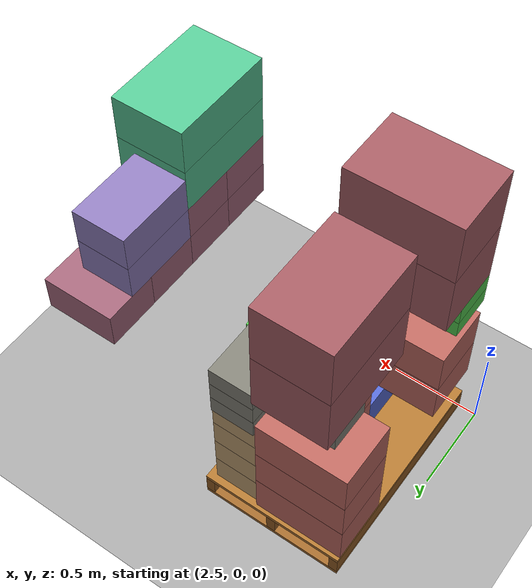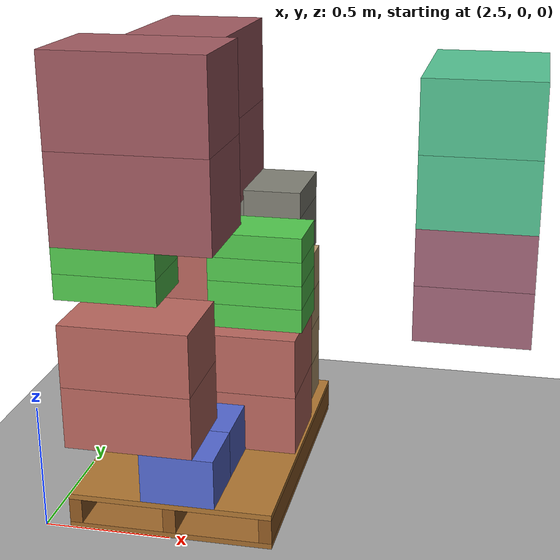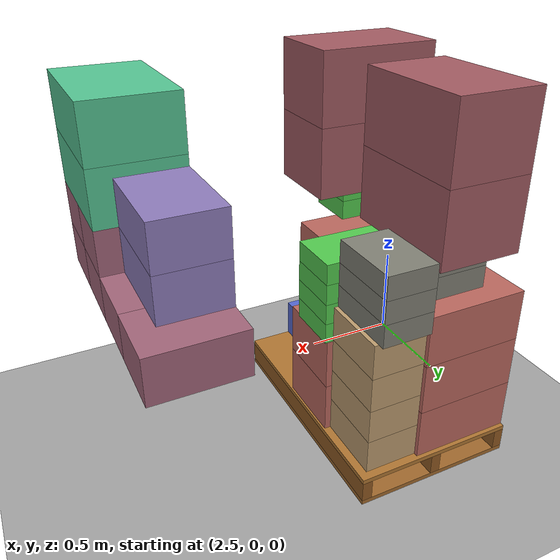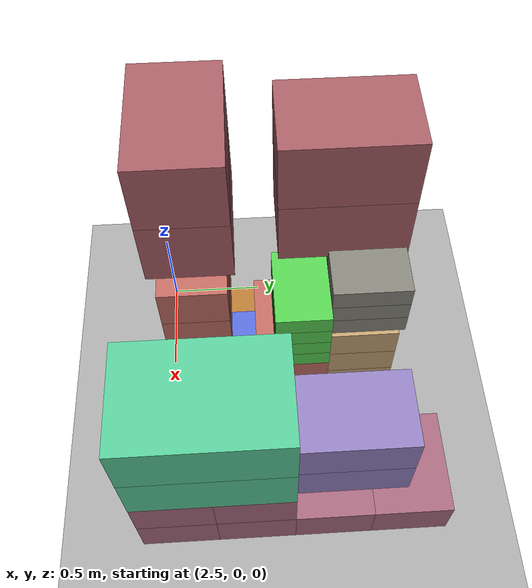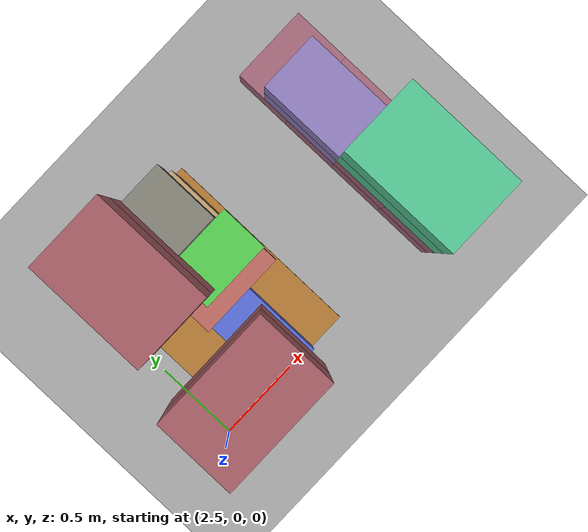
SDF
<sdf version="1.10">
 <world name="pallet_towers">
  <model name="ground_plane">
   <static>true</static>
   <link name="link">
    <collision name="collision">
     <geometry><plane><normal>0 0 1</normal><size>30 30</size></plane></geometry>
     <surface>
      <friction><ode><mu>0.55</mu><mu2>0.55</mu2></ode></friction>
      <bounce><restitution_coefficient>0</restitution_coefficient><threshold>100000</threshold></bounce>
      <contact><ode><kp>1000000</kp><kd>100</kd><max_vel>1</max_vel><min_depth>0.0005</min_depth></ode></contact>
     </surface>
    </collision>
    <visual name="visual">
     <geometry><plane><normal>0 0 1</normal><size>30 30</size></plane></geometry>
     <material><ambient>0.65 0.65 0.65 1</ambient><diffuse>0.65 0.65 0.65 1</diffuse></material>
    </visual>
   </link>
  </model>
  <model name="pallet_03_P03">
   <static>false</static>
   <pose>3 0.6 0.002 0 0 0</pose>
   <allow_auto_disable>false</allow_auto_disable>
   <link name="body">
    <inertial>
     <pose>0 0 0.072 0 0 0</pose>
     <mass>25</mass>
     <inertia>
      <ixx>3.07216082</ixx>
      <ixy>0</ixy>
      <ixz>0</ixz>
      <iyy>1.70896776</iyy>
      <iyz>0</iyz>
      <izz>4.63680694</izz>
     </inertia>
    </inertial>
    <collision name="bottom_deck_collision">
     <pose>0 0 0.011 0 0 0</pose>
     <geometry><box><size>0.8 1.2 0.022</size></box></geometry>
     <surface>
      <friction><ode><mu>0.55</mu><mu2>0.55</mu2></ode></friction>
      <bounce><restitution_coefficient>0</restitution_coefficient><threshold>100000</threshold></bounce>
      <contact><ode><kp>1000000</kp><kd>100</kd><max_vel>1</max_vel><min_depth>0.0005</min_depth></ode></contact>
     </surface>
    </collision>
    <visual name="bottom_deck_visual">
     <pose>0 0 0.011 0 0 0</pose>
     <geometry><box><size>0.8 1.2 0.022</size></box></geometry>
     <material>
      <ambient>0.46 0.28 0.10 1</ambient>
      <diffuse>0.64 0.42 0.18 1</diffuse>
      <specular>0.03 0.03 0.03 1</specular>
     </material>
    </visual>
    <collision name="left_stringer_collision">
     <pose>-0.375 0 0.072 0 0 0</pose>
     <geometry><box><size>0.05 1.2 0.1</size></box></geometry>
     <surface>
      <friction><ode><mu>0.55</mu><mu2>0.55</mu2></ode></friction>
      <bounce><restitution_coefficient>0</restitution_coefficient><threshold>100000</threshold></bounce>
      <contact><ode><kp>1000000</kp><kd>100</kd><max_vel>1</max_vel><min_depth>0.0005</min_depth></ode></contact>
     </surface>
    </collision>
    <visual name="left_stringer_visual">
     <pose>-0.375 0 0.072 0 0 0</pose>
     <geometry><box><size>0.05 1.2 0.1</size></box></geometry>
     <material>
      <ambient>0.42 0.25 0.09 1</ambient>
      <diffuse>0.58 0.36 0.14 1</diffuse>
      <specular>0.03 0.03 0.03 1</specular>
     </material>
    </visual>
    <collision name="centre_stringer_collision">
     <pose>0 0 0.072 0 0 0</pose>
     <geometry><box><size>0.05 1.2 0.1</size></box></geometry>
     <surface>
      <friction><ode><mu>0.55</mu><mu2>0.55</mu2></ode></friction>
      <bounce><restitution_coefficient>0</restitution_coefficient><threshold>100000</threshold></bounce>
      <contact><ode><kp>1000000</kp><kd>100</kd><max_vel>1</max_vel><min_depth>0.0005</min_depth></ode></contact>
     </surface>
    </collision>
    <visual name="centre_stringer_visual">
     <pose>0 0 0.072 0 0 0</pose>
     <geometry><box><size>0.05 1.2 0.1</size></box></geometry>
     <material>
      <ambient>0.42 0.25 0.09 1</ambient>
      <diffuse>0.58 0.36 0.14 1</diffuse>
      <specular>0.03 0.03 0.03 1</specular>
     </material>
    </visual>
    <collision name="right_stringer_collision">
     <pose>0.375 0 0.072 0 0 0</pose>
     <geometry><box><size>0.05 1.2 0.1</size></box></geometry>
     <surface>
      <friction><ode><mu>0.55</mu><mu2>0.55</mu2></ode></friction>
      <bounce><restitution_coefficient>0</restitution_coefficient><threshold>100000</threshold></bounce>
      <contact><ode><kp>1000000</kp><kd>100</kd><max_vel>1</max_vel><min_depth>0.0005</min_depth></ode></contact>
     </surface>
    </collision>
    <visual name="right_stringer_visual">
     <pose>0.375 0 0.072 0 0 0</pose>
     <geometry><box><size>0.05 1.2 0.1</size></box></geometry>
     <material>
      <ambient>0.42 0.25 0.09 1</ambient>
      <diffuse>0.58 0.36 0.14 1</diffuse>
      <specular>0.03 0.03 0.03 1</specular>
     </material>
    </visual>
    <collision name="top_deck_collision">
     <pose>0 0 0.133 0 0 0</pose>
     <geometry><box><size>0.8 1.2 0.022</size></box></geometry>
     <surface>
      <friction><ode><mu>0.55</mu><mu2>0.55</mu2></ode></friction>
      <bounce><restitution_coefficient>0</restitution_coefficient><threshold>100000</threshold></bounce>
      <contact><ode><kp>1000000</kp><kd>100</kd><max_vel>1</max_vel><min_depth>0.0005</min_depth></ode></contact>
     </surface>
    </collision>
    <visual name="top_deck_visual">
     <pose>0 0 0.133 0 0 0</pose>
     <geometry><box><size>0.8 1.2 0.022</size></box></geometry>
     <material>
      <ambient>0.50 0.31 0.11 1</ambient>
      <diffuse>0.70 0.47 0.20 1</diffuse>
      <specular>0.03 0.03 0.03 1</specular>
     </material>
    </visual>
   </link>
  </model>
  <model name="box_p03_0002_CHOCO_004_CHOCO">
   <static>false</static>
   <pose>3.035 0.12 0.246 0 0 0</pose>
   <link name="body">
    <inertial>
     <mass>6</mass>
     <inertia><ixx>0.0488</ixx><ixy>0</ixy><ixz>0</ixz><iyy>0.06205</iyy><iyz>0</iyz><izz>0.07085</izz></inertia>
    </inertial>
    <collision name="collision">
     <geometry><box><size>0.29 0.24 0.2</size></box></geometry>
     <surface>
      <friction><ode><mu>0.55</mu><mu2>0.55</mu2></ode></friction>
      <bounce><restitution_coefficient>0</restitution_coefficient><threshold>100000</threshold></bounce>
      <contact><ode><kp>1000000</kp><kd>100</kd><max_vel>1</max_vel><min_depth>0.0005</min_depth></ode></contact>
     </surface>
    </collision>
    <visual name="visual">
     <geometry><box><size>0.29 0.24 0.2</size></box></geometry>
     <material>
      <ambient>0.337254902 0.419607843 0.835294118 1</ambient>
      <diffuse>0.337254902 0.419607843 0.835294118 1</diffuse>
      <specular>0.05 0.05 0.05 1</specular>
     </material>
    </visual>
   </link>
  </model>
  <model name="box_p03_0004_CHOCO_006_CHOCO">
   <static>false</static>
   <pose>3.035 0.36 0.246 0 0 0</pose>
   <link name="body">
    <inertial>
     <mass>6</mass>
     <inertia><ixx>0.0488</ixx><ixy>0</ixy><ixz>0</ixz><iyy>0.06205</iyy><iyz>0</iyz><izz>0.07085</izz></inertia>
    </inertial>
    <collision name="collision">
     <geometry><box><size>0.29 0.24 0.2</size></box></geometry>
     <surface>
      <friction><ode><mu>0.55</mu><mu2>0.55</mu2></ode></friction>
      <bounce><restitution_coefficient>0</restitution_coefficient><threshold>100000</threshold></bounce>
      <contact><ode><kp>1000000</kp><kd>100</kd><max_vel>1</max_vel><min_depth>0.0005</min_depth></ode></contact>
     </surface>
    </collision>
    <visual name="visual">
     <geometry><box><size>0.29 0.24 0.2</size></box></geometry>
     <material>
      <ambient>0.337254902 0.419607843 0.835294118 1</ambient>
      <diffuse>0.337254902 0.419607843 0.835294118 1</diffuse>
      <specular>0.05 0.05 0.05 1</specular>
     </material>
    </visual>
   </link>
  </model>
  <model name="box_p03_0006_ONION_001_ONION">
   <static>false</static>
   <pose>3.14 0.655 0.271 0 0 0</pose>
   <link name="body">
    <inertial>
     <mass>10</mass>
     <inertia>
      <ixx>0.154166667</ixx>
      <ixy>0</ixy>
      <ixz>0</ixz>
      <iyy>0.260416667</iyy>
      <iyz>0</iyz>
      <izz>0.310416667</izz>
     </inertia>
    </inertial>
    <collision name="collision">
     <geometry><box><size>0.5 0.35 0.25</size></box></geometry>
     <surface>
      <friction><ode><mu>0.55</mu><mu2>0.55</mu2></ode></friction>
      <bounce><restitution_coefficient>0</restitution_coefficient><threshold>100000</threshold></bounce>
      <contact><ode><kp>1000000</kp><kd>100</kd><max_vel>1</max_vel><min_depth>0.0005</min_depth></ode></contact>
     </surface>
    </collision>
    <visual name="visual">
     <geometry><box><size>0.5 0.35 0.25</size></box></geometry>
     <material>
      <ambient>0.741176471 0.411764706 0.376470588 1</ambient>
      <diffuse>0.741176471 0.411764706 0.376470588 1</diffuse>
      <specular>0.05 0.05 0.05 1</specular>
     </material>
    </visual>
   </link>
  </model>
  <model name="box_p03_0007_ONION_002_ONION">
   <static>false</static>
   <pose>2.85 1.005 0.271 0 0 0</pose>
   <link name="body">
    <inertial>
     <mass>10</mass>
     <inertia>
      <ixx>0.154166667</ixx>
      <ixy>0</ixy>
      <ixz>0</ixz>
      <iyy>0.260416667</iyy>
      <iyz>0</iyz>
      <izz>0.310416667</izz>
     </inertia>
    </inertial>
    <collision name="collision">
     <geometry><box><size>0.5 0.35 0.25</size></box></geometry>
     <surface>
      <friction><ode><mu>0.55</mu><mu2>0.55</mu2></ode></friction>
      <bounce><restitution_coefficient>0</restitution_coefficient><threshold>100000</threshold></bounce>
      <contact><ode><kp>1000000</kp><kd>100</kd><max_vel>1</max_vel><min_depth>0.0005</min_depth></ode></contact>
     </surface>
    </collision>
    <visual name="visual">
     <geometry><box><size>0.5 0.35 0.25</size></box></geometry>
     <material>
      <ambient>0.741176471 0.411764706 0.376470588 1</ambient>
      <diffuse>0.741176471 0.411764706 0.376470588 1</diffuse>
      <specular>0.05 0.05 0.05 1</specular>
     </material>
    </visual>
   </link>
  </model>
  <model name="box_p03_0008_ONION_003_ONION">
   <static>false</static>
   <pose>2.85 1.005 0.521 0 0 0</pose>
   <link name="body">
    <inertial>
     <mass>10</mass>
     <inertia>
      <ixx>0.154166667</ixx>
      <ixy>0</ixy>
      <ixz>0</ixz>
      <iyy>0.260416667</iyy>
      <iyz>0</iyz>
      <izz>0.310416667</izz>
     </inertia>
    </inertial>
    <collision name="collision">
     <geometry><box><size>0.5 0.35 0.25</size></box></geometry>
     <surface>
      <friction><ode><mu>0.55</mu><mu2>0.55</mu2></ode></friction>
      <bounce><restitution_coefficient>0</restitution_coefficient><threshold>100000</threshold></bounce>
      <contact><ode><kp>1000000</kp><kd>100</kd><max_vel>1</max_vel><min_depth>0.0005</min_depth></ode></contact>
     </surface>
    </collision>
    <visual name="visual">
     <geometry><box><size>0.5 0.35 0.25</size></box></geometry>
     <material>
      <ambient>0.741176471 0.411764706 0.376470588 1</ambient>
      <diffuse>0.741176471 0.411764706 0.376470588 1</diffuse>
      <specular>0.05 0.05 0.05 1</specular>
     </material>
    </visual>
   </link>
  </model>
  <model name="box_p03_0009_ONION_004_ONION">
   <static>false</static>
   <pose>3.14 0.655 0.521 0 0 0</pose>
   <link name="body">
    <inertial>
     <mass>10</mass>
     <inertia>
      <ixx>0.154166667</ixx>
      <ixy>0</ixy>
      <ixz>0</ixz>
      <iyy>0.260416667</iyy>
      <iyz>0</iyz>
      <izz>0.310416667</izz>
     </inertia>
    </inertial>
    <collision name="collision">
     <geometry><box><size>0.5 0.35 0.25</size></box></geometry>
     <surface>
      <friction><ode><mu>0.55</mu><mu2>0.55</mu2></ode></friction>
      <bounce><restitution_coefficient>0</restitution_coefficient><threshold>100000</threshold></bounce>
      <contact><ode><kp>1000000</kp><kd>100</kd><max_vel>1</max_vel><min_depth>0.0005</min_depth></ode></contact>
     </surface>
    </collision>
    <visual name="visual">
     <geometry><box><size>0.5 0.35 0.25</size></box></geometry>
     <material>
      <ambient>0.741176471 0.411764706 0.376470588 1</ambient>
      <diffuse>0.741176471 0.411764706 0.376470588 1</diffuse>
      <specular>0.05 0.05 0.05 1</specular>
     </material>
    </visual>
   </link>
  </model>
  <model name="box_p03_0010_ONION_005_ONION">
   <static>false</static>
   <pose>2.85 0.175 0.471 0 0 0</pose>
   <link name="body">
    <inertial>
     <mass>10</mass>
     <inertia>
      <ixx>0.154166667</ixx>
      <ixy>0</ixy>
      <ixz>0</ixz>
      <iyy>0.260416667</iyy>
      <iyz>0</iyz>
      <izz>0.310416667</izz>
     </inertia>
    </inertial>
    <collision name="collision">
     <geometry><box><size>0.5 0.35 0.25</size></box></geometry>
     <surface>
      <friction><ode><mu>0.55</mu><mu2>0.55</mu2></ode></friction>
      <bounce><restitution_coefficient>0</restitution_coefficient><threshold>100000</threshold></bounce>
      <contact><ode><kp>1000000</kp><kd>100</kd><max_vel>1</max_vel><min_depth>0.0005</min_depth></ode></contact>
     </surface>
    </collision>
    <visual name="visual">
     <geometry><box><size>0.5 0.35 0.25</size></box></geometry>
     <material>
      <ambient>0.741176471 0.411764706 0.376470588 1</ambient>
      <diffuse>0.741176471 0.411764706 0.376470588 1</diffuse>
      <specular>0.05 0.05 0.05 1</specular>
     </material>
    </visual>
   </link>
  </model>
  <model name="box_p03_0011_ONION_006_ONION">
   <static>false</static>
   <pose>2.85 0.175 0.721 0 0 0</pose>
   <link name="body">
    <inertial>
     <mass>10</mass>
     <inertia>
      <ixx>0.154166667</ixx>
      <ixy>0</ixy>
      <ixz>0</ixz>
      <iyy>0.260416667</iyy>
      <iyz>0</iyz>
      <izz>0.310416667</izz>
     </inertia>
    </inertial>
    <collision name="collision">
     <geometry><box><size>0.5 0.35 0.25</size></box></geometry>
     <surface>
      <friction><ode><mu>0.55</mu><mu2>0.55</mu2></ode></friction>
      <bounce><restitution_coefficient>0</restitution_coefficient><threshold>100000</threshold></bounce>
      <contact><ode><kp>1000000</kp><kd>100</kd><max_vel>1</max_vel><min_depth>0.0005</min_depth></ode></contact>
     </surface>
    </collision>
    <visual name="visual">
     <geometry><box><size>0.5 0.35 0.25</size></box></geometry>
     <material>
      <ambient>0.741176471 0.411764706 0.376470588 1</ambient>
      <diffuse>0.741176471 0.411764706 0.376470588 1</diffuse>
      <specular>0.05 0.05 0.05 1</specular>
     </material>
    </visual>
   </link>
  </model>
  <model name="box_p03_0012_ONION_007_ONION">
   <static>false</static>
   <pose>2.85 1.005 0.771 0 0 0</pose>
   <link name="body">
    <inertial>
     <mass>10</mass>
     <inertia>
      <ixx>0.154166667</ixx>
      <ixy>0</ixy>
      <ixz>0</ixz>
      <iyy>0.260416667</iyy>
      <iyz>0</iyz>
      <izz>0.310416667</izz>
     </inertia>
    </inertial>
    <collision name="collision">
     <geometry><box><size>0.5 0.35 0.25</size></box></geometry>
     <surface>
      <friction><ode><mu>0.55</mu><mu2>0.55</mu2></ode></friction>
      <bounce><restitution_coefficient>0</restitution_coefficient><threshold>100000</threshold></bounce>
      <contact><ode><kp>1000000</kp><kd>100</kd><max_vel>1</max_vel><min_depth>0.0005</min_depth></ode></contact>
     </surface>
    </collision>
    <visual name="visual">
     <geometry><box><size>0.5 0.35 0.25</size></box></geometry>
     <material>
      <ambient>0.741176471 0.411764706 0.376470588 1</ambient>
      <diffuse>0.741176471 0.411764706 0.376470588 1</diffuse>
      <specular>0.05 0.05 0.05 1</specular>
     </material>
    </visual>
   </link>
  </model>
  <model name="box_p03_0013_HONEY_001_HONEY">
   <static>false</static>
   <pose>3.23 0.995 0.231 0 0 0</pose>
   <link name="body">
    <inertial>
     <mass>8</mass>
     <inertia>
      <ixx>0.0918666667</ixx>
      <ixy>0</ixy>
      <ixz>0</ixz>
      <iyy>0.0643333333</iyy>
      <iyz>0</iyz>
      <izz>0.117666667</izz>
     </inertia>
    </inertial>
    <collision name="collision">
     <geometry><box><size>0.26 0.33 0.17</size></box></geometry>
     <surface>
      <friction><ode><mu>0.55</mu><mu2>0.55</mu2></ode></friction>
      <bounce><restitution_coefficient>0</restitution_coefficient><threshold>100000</threshold></bounce>
      <contact><ode><kp>1000000</kp><kd>100</kd><max_vel>1</max_vel><min_depth>0.0005</min_depth></ode></contact>
     </surface>
    </collision>
    <visual name="visual">
     <geometry><box><size>0.26 0.33 0.17</size></box></geometry>
     <material>
      <ambient>0.752941176 0.623529412 0.443137255 1</ambient>
      <diffuse>0.752941176 0.623529412 0.443137255 1</diffuse>
      <specular>0.05 0.05 0.05 1</specular>
     </material>
    </visual>
   </link>
  </model>
  <model name="box_p03_0014_HONEY_002_HONEY">
   <static>false</static>
   <pose>3.23 0.995 0.401 0 0 0</pose>
   <link name="body">
    <inertial>
     <mass>8</mass>
     <inertia>
      <ixx>0.0918666667</ixx>
      <ixy>0</ixy>
      <ixz>0</ixz>
      <iyy>0.0643333333</iyy>
      <iyz>0</iyz>
      <izz>0.117666667</izz>
     </inertia>
    </inertial>
    <collision name="collision">
     <geometry><box><size>0.26 0.33 0.17</size></box></geometry>
     <surface>
      <friction><ode><mu>0.55</mu><mu2>0.55</mu2></ode></friction>
      <bounce><restitution_coefficient>0</restitution_coefficient><threshold>100000</threshold></bounce>
      <contact><ode><kp>1000000</kp><kd>100</kd><max_vel>1</max_vel><min_depth>0.0005</min_depth></ode></contact>
     </surface>
    </collision>
    <visual name="visual">
     <geometry><box><size>0.26 0.33 0.17</size></box></geometry>
     <material>
      <ambient>0.752941176 0.623529412 0.443137255 1</ambient>
      <diffuse>0.752941176 0.623529412 0.443137255 1</diffuse>
      <specular>0.05 0.05 0.05 1</specular>
     </material>
    </visual>
   </link>
  </model>
  <model name="box_p03_0015_HONEY_003_HONEY">
   <static>false</static>
   <pose>3.23 0.995 0.571 0 0 0</pose>
   <link name="body">
    <inertial>
     <mass>8</mass>
     <inertia>
      <ixx>0.0918666667</ixx>
      <ixy>0</ixy>
      <ixz>0</ixz>
      <iyy>0.0643333333</iyy>
      <iyz>0</iyz>
      <izz>0.117666667</izz>
     </inertia>
    </inertial>
    <collision name="collision">
     <geometry><box><size>0.26 0.33 0.17</size></box></geometry>
     <surface>
      <friction><ode><mu>0.55</mu><mu2>0.55</mu2></ode></friction>
      <bounce><restitution_coefficient>0</restitution_coefficient><threshold>100000</threshold></bounce>
      <contact><ode><kp>1000000</kp><kd>100</kd><max_vel>1</max_vel><min_depth>0.0005</min_depth></ode></contact>
     </surface>
    </collision>
    <visual name="visual">
     <geometry><box><size>0.26 0.33 0.17</size></box></geometry>
     <material>
      <ambient>0.752941176 0.623529412 0.443137255 1</ambient>
      <diffuse>0.752941176 0.623529412 0.443137255 1</diffuse>
      <specular>0.05 0.05 0.05 1</specular>
     </material>
    </visual>
   </link>
  </model>
  <model name="box_p03_0018_HONEY_006_HONEY">
   <static>false</static>
   <pose>3.23 0.995 0.741 0 0 0</pose>
   <link name="body">
    <inertial>
     <mass>8</mass>
     <inertia>
      <ixx>0.0918666667</ixx>
      <ixy>0</ixy>
      <ixz>0</ixz>
      <iyy>0.0643333333</iyy>
      <iyz>0</iyz>
      <izz>0.117666667</izz>
     </inertia>
    </inertial>
    <collision name="collision">
     <geometry><box><size>0.26 0.33 0.17</size></box></geometry>
     <surface>
      <friction><ode><mu>0.55</mu><mu2>0.55</mu2></ode></friction>
      <bounce><restitution_coefficient>0</restitution_coefficient><threshold>100000</threshold></bounce>
      <contact><ode><kp>1000000</kp><kd>100</kd><max_vel>1</max_vel><min_depth>0.0005</min_depth></ode></contact>
     </surface>
    </collision>
    <visual name="visual">
     <geometry><box><size>0.26 0.33 0.17</size></box></geometry>
     <material>
      <ambient>0.752941176 0.623529412 0.443137255 1</ambient>
      <diffuse>0.752941176 0.623529412 0.443137255 1</diffuse>
      <specular>0.05 0.05 0.05 1</specular>
     </material>
    </visual>
   </link>
  </model>
  <model name="box_p03_0020_YOGURT_001_YOGURT">
   <static>false</static>
   <pose>3.205 0.7 0.696 0 0 0</pose>
   <link name="body">
    <inertial>
     <mass>5</mass>
     <inertia>
      <ixx>0.0323333333</ixx>
      <ixy>0</ixy>
      <ixz>0</ixz>
      <iyy>0.0675416667</iyy>
      <iyz>0</iyz>
      <izz>0.0915416667</izz>
     </inertia>
    </inertial>
    <collision name="collision">
     <geometry><box><size>0.39 0.26 0.1</size></box></geometry>
     <surface>
      <friction><ode><mu>0.55</mu><mu2>0.55</mu2></ode></friction>
      <bounce><restitution_coefficient>0</restitution_coefficient><threshold>100000</threshold></bounce>
      <contact><ode><kp>1000000</kp><kd>100</kd><max_vel>1</max_vel><min_depth>0.0005</min_depth></ode></contact>
     </surface>
    </collision>
    <visual name="visual">
     <geometry><box><size>0.39 0.26 0.1</size></box></geometry>
     <material>
      <ambient>0.329411765 0.803921569 0.31372549 1</ambient>
      <diffuse>0.329411765 0.803921569 0.31372549 1</diffuse>
      <specular>0.05 0.05 0.05 1</specular>
     </material>
    </visual>
   </link>
  </model>
  <model name="box_p03_0021_YOGURT_002_YOGURT">
   <static>false</static>
   <pose>3.205 0.7 0.796 0 0 0</pose>
   <link name="body">
    <inertial>
     <mass>5</mass>
     <inertia>
      <ixx>0.0323333333</ixx>
      <ixy>0</ixy>
      <ixz>0</ixz>
      <iyy>0.0675416667</iyy>
      <iyz>0</iyz>
      <izz>0.0915416667</izz>
     </inertia>
    </inertial>
    <collision name="collision">
     <geometry><box><size>0.39 0.26 0.1</size></box></geometry>
     <surface>
      <friction><ode><mu>0.55</mu><mu2>0.55</mu2></ode></friction>
      <bounce><restitution_coefficient>0</restitution_coefficient><threshold>100000</threshold></bounce>
      <contact><ode><kp>1000000</kp><kd>100</kd><max_vel>1</max_vel><min_depth>0.0005</min_depth></ode></contact>
     </surface>
    </collision>
    <visual name="visual">
     <geometry><box><size>0.39 0.26 0.1</size></box></geometry>
     <material>
      <ambient>0.329411765 0.803921569 0.31372549 1</ambient>
      <diffuse>0.329411765 0.803921569 0.31372549 1</diffuse>
      <specular>0.05 0.05 0.05 1</specular>
     </material>
    </visual>
   </link>
  </model>
  <model name="box_p03_0022_YOGURT_003_YOGURT">
   <static>false</static>
   <pose>3.205 0.7 0.896 0 0 0</pose>
   <link name="body">
    <inertial>
     <mass>5</mass>
     <inertia>
      <ixx>0.0323333333</ixx>
      <ixy>0</ixy>
      <ixz>0</ixz>
      <iyy>0.0675416667</iyy>
      <iyz>0</iyz>
      <izz>0.0915416667</izz>
     </inertia>
    </inertial>
    <collision name="collision">
     <geometry><box><size>0.39 0.26 0.1</size></box></geometry>
     <surface>
      <friction><ode><mu>0.55</mu><mu2>0.55</mu2></ode></friction>
      <bounce><restitution_coefficient>0</restitution_coefficient><threshold>100000</threshold></bounce>
      <contact><ode><kp>1000000</kp><kd>100</kd><max_vel>1</max_vel><min_depth>0.0005</min_depth></ode></contact>
     </surface>
    </collision>
    <visual name="visual">
     <geometry><box><size>0.39 0.26 0.1</size></box></geometry>
     <material>
      <ambient>0.329411765 0.803921569 0.31372549 1</ambient>
      <diffuse>0.329411765 0.803921569 0.31372549 1</diffuse>
      <specular>0.05 0.05 0.05 1</specular>
     </material>
    </visual>
   </link>
  </model>
  <model name="box_p03_0023_YOGURT_004_YOGURT">
   <static>false</static>
   <pose>3.205 0.7 0.996 0 0 0</pose>
   <link name="body">
    <inertial>
     <mass>5</mass>
     <inertia>
      <ixx>0.0323333333</ixx>
      <ixy>0</ixy>
      <ixz>0</ixz>
      <iyy>0.0675416667</iyy>
      <iyz>0</iyz>
      <izz>0.0915416667</izz>
     </inertia>
    </inertial>
    <collision name="collision">
     <geometry><box><size>0.39 0.26 0.1</size></box></geometry>
     <surface>
      <friction><ode><mu>0.55</mu><mu2>0.55</mu2></ode></friction>
      <bounce><restitution_coefficient>0</restitution_coefficient><threshold>100000</threshold></bounce>
      <contact><ode><kp>1000000</kp><kd>100</kd><max_vel>1</max_vel><min_depth>0.0005</min_depth></ode></contact>
     </surface>
    </collision>
    <visual name="visual">
     <geometry><box><size>0.39 0.26 0.1</size></box></geometry>
     <material>
      <ambient>0.329411765 0.803921569 0.31372549 1</ambient>
      <diffuse>0.329411765 0.803921569 0.31372549 1</diffuse>
      <specular>0.05 0.05 0.05 1</specular>
     </material>
    </visual>
   </link>
  </model>
  <model name="box_p03_0025_YOGURT_006_YOGURT">
   <static>false</static>
   <pose>2.795 0.13 0.996 0 0 0</pose>
   <link name="body">
    <inertial>
     <mass>5</mass>
     <inertia>
      <ixx>0.0323333333</ixx>
      <ixy>0</ixy>
      <ixz>0</ixz>
      <iyy>0.0675416667</iyy>
      <iyz>0</iyz>
      <izz>0.0915416667</izz>
     </inertia>
    </inertial>
    <collision name="collision">
     <geometry><box><size>0.39 0.26 0.1</size></box></geometry>
     <surface>
      <friction><ode><mu>0.55</mu><mu2>0.55</mu2></ode></friction>
      <bounce><restitution_coefficient>0</restitution_coefficient><threshold>100000</threshold></bounce>
      <contact><ode><kp>1000000</kp><kd>100</kd><max_vel>1</max_vel><min_depth>0.0005</min_depth></ode></contact>
     </surface>
    </collision>
    <visual name="visual">
     <geometry><box><size>0.39 0.26 0.1</size></box></geometry>
     <material>
      <ambient>0.329411765 0.803921569 0.31372549 1</ambient>
      <diffuse>0.329411765 0.803921569 0.31372549 1</diffuse>
      <specular>0.05 0.05 0.05 1</specular>
     </material>
    </visual>
   </link>
  </model>
  <model name="box_p03_0026_YOGURT_007_YOGURT">
   <static>false</static>
   <pose>2.795 0.13 1.096 0 0 0</pose>
   <link name="body">
    <inertial>
     <mass>5</mass>
     <inertia>
      <ixx>0.0323333333</ixx>
      <ixy>0</ixy>
      <ixz>0</ixz>
      <iyy>0.0675416667</iyy>
      <iyz>0</iyz>
      <izz>0.0915416667</izz>
     </inertia>
    </inertial>
    <collision name="collision">
     <geometry><box><size>0.39 0.26 0.1</size></box></geometry>
     <surface>
      <friction><ode><mu>0.55</mu><mu2>0.55</mu2></ode></friction>
      <bounce><restitution_coefficient>0</restitution_coefficient><threshold>100000</threshold></bounce>
      <contact><ode><kp>1000000</kp><kd>100</kd><max_vel>1</max_vel><min_depth>0.0005</min_depth></ode></contact>
     </surface>
    </collision>
    <visual name="visual">
     <geometry><box><size>0.39 0.26 0.1</size></box></geometry>
     <material>
      <ambient>0.329411765 0.803921569 0.31372549 1</ambient>
      <diffuse>0.329411765 0.803921569 0.31372549 1</diffuse>
      <specular>0.05 0.05 0.05 1</specular>
     </material>
    </visual>
   </link>
  </model>
  <model name="box_p03_0027_BUTTER_001_BUTTER">
   <static>false</static>
   <pose>3.22 1.01 0.881 0 0 0</pose>
   <link name="body">
    <inertial>
     <mass>10</mass>
     <inertia>
      <ixx>0.118083333</ixx>
      <ixy>0</ixy>
      <ixz>0</ixz>
      <iyy>0.0580833333</iyy>
      <iyz>0</iyz>
      <izz>0.156</izz>
     </inertia>
    </inertial>
    <collision name="collision">
     <geometry><box><size>0.24 0.36 0.11</size></box></geometry>
     <surface>
      <friction><ode><mu>0.55</mu><mu2>0.55</mu2></ode></friction>
      <bounce><restitution_coefficient>0</restitution_coefficient><threshold>100000</threshold></bounce>
      <contact><ode><kp>1000000</kp><kd>100</kd><max_vel>1</max_vel><min_depth>0.0005</min_depth></ode></contact>
     </surface>
    </collision>
    <visual name="visual">
     <geometry><box><size>0.24 0.36 0.11</size></box></geometry>
     <material>
      <ambient>0.51372549 0.509803922 0.466666667 1</ambient>
      <diffuse>0.51372549 0.509803922 0.466666667 1</diffuse>
      <specular>0.05 0.05 0.05 1</specular>
     </material>
    </visual>
   </link>
  </model>
  <model name="box_p03_0028_BUTTER_002_BUTTER">
   <static>false</static>
   <pose>3.22 1.01 0.991 0 0 0</pose>
   <link name="body">
    <inertial>
     <mass>10</mass>
     <inertia>
      <ixx>0.118083333</ixx>
      <ixy>0</ixy>
      <ixz>0</ixz>
      <iyy>0.0580833333</iyy>
      <iyz>0</iyz>
      <izz>0.156</izz>
     </inertia>
    </inertial>
    <collision name="collision">
     <geometry><box><size>0.24 0.36 0.11</size></box></geometry>
     <surface>
      <friction><ode><mu>0.55</mu><mu2>0.55</mu2></ode></friction>
      <bounce><restitution_coefficient>0</restitution_coefficient><threshold>100000</threshold></bounce>
      <contact><ode><kp>1000000</kp><kd>100</kd><max_vel>1</max_vel><min_depth>0.0005</min_depth></ode></contact>
     </surface>
    </collision>
    <visual name="visual">
     <geometry><box><size>0.24 0.36 0.11</size></box></geometry>
     <material>
      <ambient>0.51372549 0.509803922 0.466666667 1</ambient>
      <diffuse>0.51372549 0.509803922 0.466666667 1</diffuse>
      <specular>0.05 0.05 0.05 1</specular>
     </material>
    </visual>
   </link>
  </model>
  <model name="box_p03_0029_BUTTER_003_BUTTER">
   <static>false</static>
   <pose>2.92 0.95 0.951 0 0 0</pose>
   <link name="body">
    <inertial>
     <mass>10</mass>
     <inertia>
      <ixx>0.0580833333</ixx>
      <ixy>0</ixy>
      <ixz>0</ixz>
      <iyy>0.118083333</iyy>
      <iyz>0</iyz>
      <izz>0.156</izz>
     </inertia>
    </inertial>
    <collision name="collision">
     <geometry><box><size>0.36 0.24 0.11</size></box></geometry>
     <surface>
      <friction><ode><mu>0.55</mu><mu2>0.55</mu2></ode></friction>
      <bounce><restitution_coefficient>0</restitution_coefficient><threshold>100000</threshold></bounce>
      <contact><ode><kp>1000000</kp><kd>100</kd><max_vel>1</max_vel><min_depth>0.0005</min_depth></ode></contact>
     </surface>
    </collision>
    <visual name="visual">
     <geometry><box><size>0.36 0.24 0.11</size></box></geometry>
     <material>
      <ambient>0.51372549 0.509803922 0.466666667 1</ambient>
      <diffuse>0.51372549 0.509803922 0.466666667 1</diffuse>
      <specular>0.05 0.05 0.05 1</specular>
     </material>
    </visual>
   </link>
  </model>
  <model name="box_p03_0030_BUTTER_004_BUTTER">
   <static>false</static>
   <pose>2.92 0.95 1.061 0 0 0</pose>
   <link name="body">
    <inertial>
     <mass>10</mass>
     <inertia>
      <ixx>0.0580833333</ixx>
      <ixy>0</ixy>
      <ixz>0</ixz>
      <iyy>0.118083333</iyy>
      <iyz>0</iyz>
      <izz>0.156</izz>
     </inertia>
    </inertial>
    <collision name="collision">
     <geometry><box><size>0.36 0.24 0.11</size></box></geometry>
     <surface>
      <friction><ode><mu>0.55</mu><mu2>0.55</mu2></ode></friction>
      <bounce><restitution_coefficient>0</restitution_coefficient><threshold>100000</threshold></bounce>
      <contact><ode><kp>1000000</kp><kd>100</kd><max_vel>1</max_vel><min_depth>0.0005</min_depth></ode></contact>
     </surface>
    </collision>
    <visual name="visual">
     <geometry><box><size>0.36 0.24 0.11</size></box></geometry>
     <material>
      <ambient>0.51372549 0.509803922 0.466666667 1</ambient>
      <diffuse>0.51372549 0.509803922 0.466666667 1</diffuse>
      <specular>0.05 0.05 0.05 1</specular>
     </material>
    </visual>
   </link>
  </model>
  <model name="box_p03_0033_BUTTER_007_BUTTER">
   <static>false</static>
   <pose>3.22 1.01 1.101 0 0 0</pose>
   <link name="body">
    <inertial>
     <mass>10</mass>
     <inertia>
      <ixx>0.118083333</ixx>
      <ixy>0</ixy>
      <ixz>0</ixz>
      <iyy>0.0580833333</iyy>
      <iyz>0</iyz>
      <izz>0.156</izz>
     </inertia>
    </inertial>
    <collision name="collision">
     <geometry><box><size>0.24 0.36 0.11</size></box></geometry>
     <surface>
      <friction><ode><mu>0.55</mu><mu2>0.55</mu2></ode></friction>
      <bounce><restitution_coefficient>0</restitution_coefficient><threshold>100000</threshold></bounce>
      <contact><ode><kp>1000000</kp><kd>100</kd><max_vel>1</max_vel><min_depth>0.0005</min_depth></ode></contact>
     </surface>
    </collision>
    <visual name="visual">
     <geometry><box><size>0.24 0.36 0.11</size></box></geometry>
     <material>
      <ambient>0.51372549 0.509803922 0.466666667 1</ambient>
      <diffuse>0.51372549 0.509803922 0.466666667 1</diffuse>
      <specular>0.05 0.05 0.05 1</specular>
     </material>
    </visual>
   </link>
  </model>
  <model name="box_p03_0034_CHIPS_001_CHIPS">
   <static>false</static>
   <pose>2.9 0.9 1.291 0 0 0</pose>
   <link name="body">
    <inertial>
     <mass>3.5</mass>
     <inertia>
      <ixx>0.140729167</ixx>
      <ixy>0</ixy>
      <ixz>0</ixz>
      <iyy>0.0823958333</iyy>
      <iyz>0</iyz>
      <izz>0.151666667</izz>
     </inertia>
    </inertial>
    <collision name="collision">
     <geometry><box><size>0.4 0.6 0.35</size></box></geometry>
     <surface>
      <friction><ode><mu>0.55</mu><mu2>0.55</mu2></ode></friction>
      <bounce><restitution_coefficient>0</restitution_coefficient><threshold>100000</threshold></bounce>
      <contact><ode><kp>1000000</kp><kd>100</kd><max_vel>1</max_vel><min_depth>0.0005</min_depth></ode></contact>
     </surface>
    </collision>
    <visual name="visual">
     <geometry><box><size>0.4 0.6 0.35</size></box></geometry>
     <material>
      <ambient>0.643137255 0.360784314 0.388235294 1</ambient>
      <diffuse>0.643137255 0.360784314 0.388235294 1</diffuse>
      <specular>0.05 0.05 0.05 1</specular>
     </material>
    </visual>
   </link>
  </model>
  <model name="box_p03_0035_CHIPS_002_CHIPS">
   <static>false</static>
   <pose>2.9 0.2 1.321 0 0 0</pose>
   <link name="body">
    <inertial>
     <mass>3.5</mass>
     <inertia>
      <ixx>0.0823958333</ixx>
      <ixy>0</ixy>
      <ixz>0</ixz>
      <iyy>0.140729167</iyy>
      <iyz>0</iyz>
      <izz>0.151666667</izz>
     </inertia>
    </inertial>
    <collision name="collision">
     <geometry><box><size>0.6 0.4 0.35</size></box></geometry>
     <surface>
      <friction><ode><mu>0.55</mu><mu2>0.55</mu2></ode></friction>
      <bounce><restitution_coefficient>0</restitution_coefficient><threshold>100000</threshold></bounce>
      <contact><ode><kp>1000000</kp><kd>100</kd><max_vel>1</max_vel><min_depth>0.0005</min_depth></ode></contact>
     </surface>
    </collision>
    <visual name="visual">
     <geometry><box><size>0.6 0.4 0.35</size></box></geometry>
     <material>
      <ambient>0.643137255 0.360784314 0.388235294 1</ambient>
      <diffuse>0.643137255 0.360784314 0.388235294 1</diffuse>
      <specular>0.05 0.05 0.05 1</specular>
     </material>
    </visual>
   </link>
  </model>
  <model name="box_p03_0036_CHIPS_003_CHIPS">
   <static>false</static>
   <pose>2.9 0.2 1.671 0 0 0</pose>
   <link name="body">
    <inertial>
     <mass>3.5</mass>
     <inertia>
      <ixx>0.0823958333</ixx>
      <ixy>0</ixy>
      <ixz>0</ixz>
      <iyy>0.140729167</iyy>
      <iyz>0</iyz>
      <izz>0.151666667</izz>
     </inertia>
    </inertial>
    <collision name="collision">
     <geometry><box><size>0.6 0.4 0.35</size></box></geometry>
     <surface>
      <friction><ode><mu>0.55</mu><mu2>0.55</mu2></ode></friction>
      <bounce><restitution_coefficient>0</restitution_coefficient><threshold>100000</threshold></bounce>
      <contact><ode><kp>1000000</kp><kd>100</kd><max_vel>1</max_vel><min_depth>0.0005</min_depth></ode></contact>
     </surface>
    </collision>
    <visual name="visual">
     <geometry><box><size>0.6 0.4 0.35</size></box></geometry>
     <material>
      <ambient>0.643137255 0.360784314 0.388235294 1</ambient>
      <diffuse>0.643137255 0.360784314 0.388235294 1</diffuse>
      <specular>0.05 0.05 0.05 1</specular>
     </material>
    </visual>
   </link>
  </model>
  <model name="box_p03_0037_CHIPS_004_CHIPS">
   <static>false</static>
   <pose>2.9 0.9 1.641 0 0 0</pose>
   <link name="body">
    <inertial>
     <mass>3.5</mass>
     <inertia>
      <ixx>0.140729167</ixx>
      <ixy>0</ixy>
      <ixz>0</ixz>
      <iyy>0.0823958333</iyy>
      <iyz>0</iyz>
      <izz>0.151666667</izz>
     </inertia>
    </inertial>
    <collision name="collision">
     <geometry><box><size>0.4 0.6 0.35</size></box></geometry>
     <surface>
      <friction><ode><mu>0.55</mu><mu2>0.55</mu2></ode></friction>
      <bounce><restitution_coefficient>0</restitution_coefficient><threshold>100000</threshold></bounce>
      <contact><ode><kp>1000000</kp><kd>100</kd><max_vel>1</max_vel><min_depth>0.0005</min_depth></ode></contact>
     </surface>
    </collision>
    <visual name="visual">
     <geometry><box><size>0.4 0.6 0.35</size></box></geometry>
     <material>
      <ambient>0.643137255 0.360784314 0.388235294 1</ambient>
      <diffuse>0.643137255 0.360784314 0.388235294 1</diffuse>
      <specular>0.05 0.05 0.05 1</specular>
     </material>
    </visual>
   </link>
  </model>
  <model name="box_p04_0010_ICECRM_001_ICECRM">
   <static>false</static>
   <pose>4.1 0.15 0.996 0 0 0</pose>
   <link name="body">
    <inertial>
     <mass>8</mass>
     <inertia>
      <ixx>0.0866666667</ixx>
      <ixy>0</ixy>
      <ixz>0</ixz>
      <iyy>0.133333333</iyy>
      <iyz>0</iyz>
      <izz>0.166666667</izz>
     </inertia>
    </inertial>
    <collision name="collision">
     <geometry><box><size>0.4 0.3 0.2</size></box></geometry>
     <surface>
      <friction><ode><mu>0.55</mu><mu2>0.55</mu2></ode></friction>
      <bounce><restitution_coefficient>0</restitution_coefficient><threshold>100000</threshold></bounce>
      <contact><ode><kp>1000000</kp><kd>100</kd><max_vel>1</max_vel><min_depth>0.0005</min_depth></ode></contact>
     </surface>
    </collision>
    <visual name="visual">
     <geometry><box><size>0.4 0.3 0.2</size></box></geometry>
     <material>
      <ambient>0.643137255 0.403921569 0.482352941 1</ambient>
      <diffuse>0.643137255 0.403921569 0.482352941 1</diffuse>
      <specular>0.05 0.05 0.05 1</specular>
     </material>
    </visual>
   </link>
  </model>
  <model name="box_p04_0011_ICECRM_002_ICECRM">
   <static>false</static>
   <pose>4.1 0.45 0.996 0 0 0</pose>
   <link name="body">
    <inertial>
     <mass>8</mass>
     <inertia>
      <ixx>0.0866666667</ixx>
      <ixy>0</ixy>
      <ixz>0</ixz>
      <iyy>0.133333333</iyy>
      <iyz>0</iyz>
      <izz>0.166666667</izz>
     </inertia>
    </inertial>
    <collision name="collision">
     <geometry><box><size>0.4 0.3 0.2</size></box></geometry>
     <surface>
      <friction><ode><mu>0.55</mu><mu2>0.55</mu2></ode></friction>
      <bounce><restitution_coefficient>0</restitution_coefficient><threshold>100000</threshold></bounce>
      <contact><ode><kp>1000000</kp><kd>100</kd><max_vel>1</max_vel><min_depth>0.0005</min_depth></ode></contact>
     </surface>
    </collision>
    <visual name="visual">
     <geometry><box><size>0.4 0.3 0.2</size></box></geometry>
     <material>
      <ambient>0.643137255 0.403921569 0.482352941 1</ambient>
      <diffuse>0.643137255 0.403921569 0.482352941 1</diffuse>
      <specular>0.05 0.05 0.05 1</specular>
     </material>
    </visual>
   </link>
  </model>
  <model name="box_p04_0012_ICECRM_003_ICECRM">
   <static>false</static>
   <pose>4.1 0.75 0.996 0 0 0</pose>
   <link name="body">
    <inertial>
     <mass>8</mass>
     <inertia>
      <ixx>0.0866666667</ixx>
      <ixy>0</ixy>
      <ixz>0</ixz>
      <iyy>0.133333333</iyy>
      <iyz>0</iyz>
      <izz>0.166666667</izz>
     </inertia>
    </inertial>
    <collision name="collision">
     <geometry><box><size>0.4 0.3 0.2</size></box></geometry>
     <surface>
      <friction><ode><mu>0.55</mu><mu2>0.55</mu2></ode></friction>
      <bounce><restitution_coefficient>0</restitution_coefficient><threshold>100000</threshold></bounce>
      <contact><ode><kp>1000000</kp><kd>100</kd><max_vel>1</max_vel><min_depth>0.0005</min_depth></ode></contact>
     </surface>
    </collision>
    <visual name="visual">
     <geometry><box><size>0.4 0.3 0.2</size></box></geometry>
     <material>
      <ambient>0.643137255 0.403921569 0.482352941 1</ambient>
      <diffuse>0.643137255 0.403921569 0.482352941 1</diffuse>
      <specular>0.05 0.05 0.05 1</specular>
     </material>
    </visual>
   </link>
  </model>
  <model name="box_p04_0013_ICECRM_004_ICECRM">
   <static>false</static>
   <pose>4.1 1.05 0.996 0 0 0</pose>
   <link name="body">
    <inertial>
     <mass>8</mass>
     <inertia>
      <ixx>0.0866666667</ixx>
      <ixy>0</ixy>
      <ixz>0</ixz>
      <iyy>0.133333333</iyy>
      <iyz>0</iyz>
      <izz>0.166666667</izz>
     </inertia>
    </inertial>
    <collision name="collision">
     <geometry><box><size>0.4 0.3 0.2</size></box></geometry>
     <surface>
      <friction><ode><mu>0.55</mu><mu2>0.55</mu2></ode></friction>
      <bounce><restitution_coefficient>0</restitution_coefficient><threshold>100000</threshold></bounce>
      <contact><ode><kp>1000000</kp><kd>100</kd><max_vel>1</max_vel><min_depth>0.0005</min_depth></ode></contact>
     </surface>
    </collision>
    <visual name="visual">
     <geometry><box><size>0.4 0.3 0.2</size></box></geometry>
     <material>
      <ambient>0.643137255 0.403921569 0.482352941 1</ambient>
      <diffuse>0.643137255 0.403921569 0.482352941 1</diffuse>
      <specular>0.05 0.05 0.05 1</specular>
     </material>
    </visual>
   </link>
  </model>
  <model name="box_p04_0014_ICECRM_005_ICECRM">
   <static>false</static>
   <pose>4.1 0.15 1.196 0 0 0</pose>
   <link name="body">
    <inertial>
     <mass>8</mass>
     <inertia>
      <ixx>0.0866666667</ixx>
      <ixy>0</ixy>
      <ixz>0</ixz>
      <iyy>0.133333333</iyy>
      <iyz>0</iyz>
      <izz>0.166666667</izz>
     </inertia>
    </inertial>
    <collision name="collision">
     <geometry><box><size>0.4 0.3 0.2</size></box></geometry>
     <surface>
      <friction><ode><mu>0.55</mu><mu2>0.55</mu2></ode></friction>
      <bounce><restitution_coefficient>0</restitution_coefficient><threshold>100000</threshold></bounce>
      <contact><ode><kp>1000000</kp><kd>100</kd><max_vel>1</max_vel><min_depth>0.0005</min_depth></ode></contact>
     </surface>
    </collision>
    <visual name="visual">
     <geometry><box><size>0.4 0.3 0.2</size></box></geometry>
     <material>
      <ambient>0.643137255 0.403921569 0.482352941 1</ambient>
      <diffuse>0.643137255 0.403921569 0.482352941 1</diffuse>
      <specular>0.05 0.05 0.05 1</specular>
     </material>
    </visual>
   </link>
  </model>
  <model name="box_p04_0015_ICECRM_006_ICECRM">
   <static>false</static>
   <pose>4.1 0.45 1.196 0 0 0</pose>
   <link name="body">
    <inertial>
     <mass>8</mass>
     <inertia>
      <ixx>0.0866666667</ixx>
      <ixy>0</ixy>
      <ixz>0</ixz>
      <iyy>0.133333333</iyy>
      <iyz>0</iyz>
      <izz>0.166666667</izz>
     </inertia>
    </inertial>
    <collision name="collision">
     <geometry><box><size>0.4 0.3 0.2</size></box></geometry>
     <surface>
      <friction><ode><mu>0.55</mu><mu2>0.55</mu2></ode></friction>
      <bounce><restitution_coefficient>0</restitution_coefficient><threshold>100000</threshold></bounce>
      <contact><ode><kp>1000000</kp><kd>100</kd><max_vel>1</max_vel><min_depth>0.0005</min_depth></ode></contact>
     </surface>
    </collision>
    <visual name="visual">
     <geometry><box><size>0.4 0.3 0.2</size></box></geometry>
     <material>
      <ambient>0.643137255 0.403921569 0.482352941 1</ambient>
      <diffuse>0.643137255 0.403921569 0.482352941 1</diffuse>
      <specular>0.05 0.05 0.05 1</specular>
     </material>
    </visual>
   </link>
  </model>
  <model name="box_p04_0020_RICE_005_RICE">
   <static>false</static>
   <pose>4.05 0.82 1.196 0 0 0</pose>
   <link name="body">
    <inertial>
     <mass>20</mass>
     <inertia>
      <ixx>0.389333333</ixx>
      <ixy>0</ixy>
      <ixz>0</ixz>
      <iyy>0.216666667</iyy>
      <iyz>0</iyz>
      <izz>0.472666667</izz>
     </inertia>
    </inertial>
    <collision name="collision">
     <geometry><box><size>0.3 0.44 0.2</size></box></geometry>
     <surface>
      <friction><ode><mu>0.55</mu><mu2>0.55</mu2></ode></friction>
      <bounce><restitution_coefficient>0</restitution_coefficient><threshold>100000</threshold></bounce>
      <contact><ode><kp>1000000</kp><kd>100</kd><max_vel>1</max_vel><min_depth>0.0005</min_depth></ode></contact>
     </surface>
    </collision>
    <visual name="visual">
     <geometry><box><size>0.3 0.44 0.2</size></box></geometry>
     <material>
      <ambient>0.564705882 0.494117647 0.741176471 1</ambient>
      <diffuse>0.564705882 0.494117647 0.741176471 1</diffuse>
      <specular>0.05 0.05 0.05 1</specular>
     </material>
    </visual>
   </link>
  </model>
  <model name="box_p04_0021_RICE_006_RICE">
   <static>false</static>
   <pose>4.05 0.82 1.396 0 0 0</pose>
   <link name="body">
    <inertial>
     <mass>20</mass>
     <inertia>
      <ixx>0.389333333</ixx>
      <ixy>0</ixy>
      <ixz>0</ixz>
      <iyy>0.216666667</iyy>
      <iyz>0</iyz>
      <izz>0.472666667</izz>
     </inertia>
    </inertial>
    <collision name="collision">
     <geometry><box><size>0.3 0.44 0.2</size></box></geometry>
     <surface>
      <friction><ode><mu>0.55</mu><mu2>0.55</mu2></ode></friction>
      <bounce><restitution_coefficient>0</restitution_coefficient><threshold>100000</threshold></bounce>
      <contact><ode><kp>1000000</kp><kd>100</kd><max_vel>1</max_vel><min_depth>0.0005</min_depth></ode></contact>
     </surface>
    </collision>
    <visual name="visual">
     <geometry><box><size>0.3 0.44 0.2</size></box></geometry>
     <material>
      <ambient>0.564705882 0.494117647 0.741176471 1</ambient>
      <diffuse>0.564705882 0.494117647 0.741176471 1</diffuse>
      <specular>0.05 0.05 0.05 1</specular>
     </material>
    </visual>
   </link>
  </model>
  <model name="box_p04_0022_DIAPER_001_DIAPER">
   <static>false</static>
   <pose>4.1 0.3 1.421 0 0 0</pose>
   <link name="body">
    <inertial>
     <mass>7</mass>
     <inertia>
      <ixx>0.246458333</ixx>
      <ixy>0</ixy>
      <ixz>0</ixz>
      <iyy>0.129791667</iyy>
      <iyz>0</iyz>
      <izz>0.303333333</izz>
     </inertia>
    </inertial>
    <collision name="collision">
     <geometry><box><size>0.4 0.6 0.25</size></box></geometry>
     <surface>
      <friction><ode><mu>0.55</mu><mu2>0.55</mu2></ode></friction>
      <bounce><restitution_coefficient>0</restitution_coefficient><threshold>100000</threshold></bounce>
      <contact><ode><kp>1000000</kp><kd>100</kd><max_vel>1</max_vel><min_depth>0.0005</min_depth></ode></contact>
     </surface>
    </collision>
    <visual name="visual">
     <geometry><box><size>0.4 0.6 0.25</size></box></geometry>
     <material>
      <ambient>0.337254902 0.780392157 0.584313725 1</ambient>
      <diffuse>0.337254902 0.780392157 0.584313725 1</diffuse>
      <specular>0.05 0.05 0.05 1</specular>
     </material>
    </visual>
   </link>
  </model>
  <model name="box_p04_0024_DIAPER_003_DIAPER">
   <static>false</static>
   <pose>4.1 0.3 1.671 0 0 0</pose>
   <link name="body">
    <inertial>
     <mass>7</mass>
     <inertia>
      <ixx>0.246458333</ixx>
      <ixy>0</ixy>
      <ixz>0</ixz>
      <iyy>0.129791667</iyy>
      <iyz>0</iyz>
      <izz>0.303333333</izz>
     </inertia>
    </inertial>
    <collision name="collision">
     <geometry><box><size>0.4 0.6 0.25</size></box></geometry>
     <surface>
      <friction><ode><mu>0.55</mu><mu2>0.55</mu2></ode></friction>
      <bounce><restitution_coefficient>0</restitution_coefficient><threshold>100000</threshold></bounce>
      <contact><ode><kp>1000000</kp><kd>100</kd><max_vel>1</max_vel><min_depth>0.0005</min_depth></ode></contact>
     </surface>
    </collision>
    <visual name="visual">
     <geometry><box><size>0.4 0.6 0.25</size></box></geometry>
     <material>
      <ambient>0.337254902 0.780392157 0.584313725 1</ambient>
      <diffuse>0.337254902 0.780392157 0.584313725 1</diffuse>
      <specular>0.05 0.05 0.05 1</specular>
     </material>
    </visual>
   </link>
  </model>
 </world>
</sdf>
